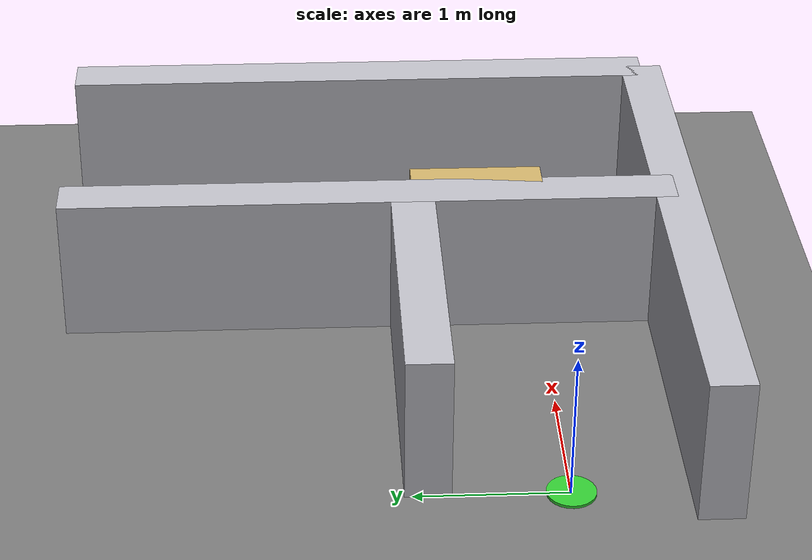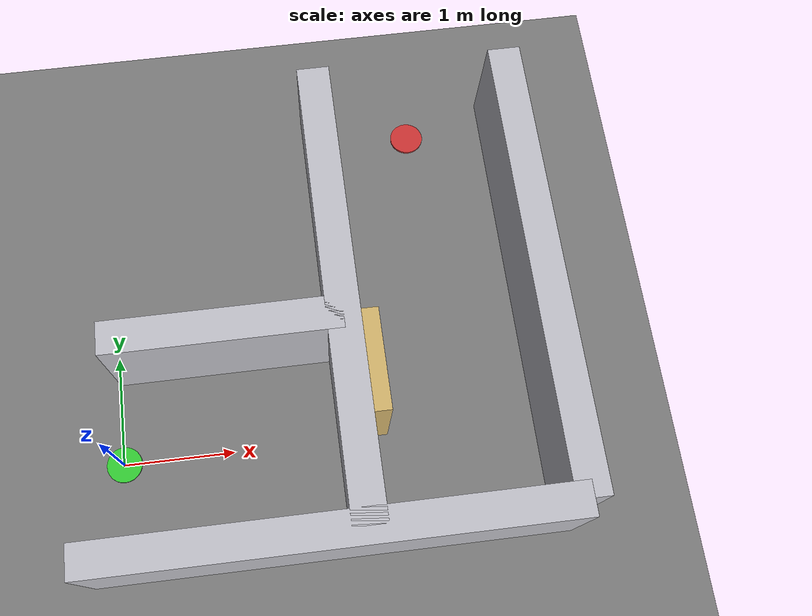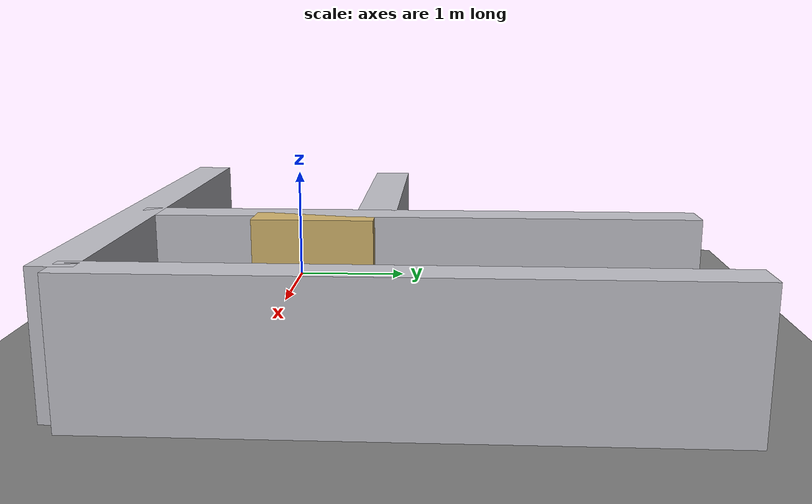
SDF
<?xml version="1.0"?>
<sdf version="1.8">
  <world name="baseline_narrow_gentle_turn">
    <physics name="1ms" type="ignored">
      <max_step_size>0.001</max_step_size>
      <real_time_factor>1.0</real_time_factor>
    </physics>
    <plugin filename="gz-sim-physics-system" name="gz::sim::systems::Physics"/>
    <plugin filename="gz-sim-sensors-system" name="gz::sim::systems::Sensors">
      <render_engine>ogre2</render_engine>
    </plugin>
    <plugin filename="gz-sim-user-commands-system" name="gz::sim::systems::UserCommands"/>
    <plugin filename="gz-sim-scene-broadcaster-system" name="gz::sim::systems::SceneBroadcaster"/>

    <gravity>0 0 -9.81</gravity>

    <light name="sun" type="directional">
      <cast_shadows>true</cast_shadows>
      <pose>0 0 10 0 0 0</pose>
      <diffuse>0.8 0.8 0.8 1</diffuse>
      <specular>0.2 0.2 0.2 1</specular>
      <attenuation>
        <range>1000</range>
        <constant>0.9</constant>
        <linear>0.01</linear>
        <quadratic>0.001</quadratic>
      </attenuation>
      <direction>-0.5 0.1 -0.9</direction>
    </light>

    <model name="ground_plane">
      <static>true</static>
      <link name="link">
        <collision name="collision"><geometry><plane><normal>0 0 1</normal><size>100 100</size></plane></geometry></collision>
        <visual name="visual"><geometry><plane><normal>0 0 1</normal><size>100 100</size></plane></geometry><material><ambient>0.48 0.48 0.48 1</ambient><diffuse>0.48 0.48 0.48 1</diffuse></material></visual>
      </link>
    </model>

    <!-- L-shaped corridor, 1.8m wide throughout.
         Horizontal: x=-0.3→2.1, y=-0.9→0.9
         Vertical:   x=2.1→3.9, y=-0.9→3.3
         90° left turn at the corner. -->

    <!-- Horizontal bottom wall (full span) -->
    <model name="h_bottom">
      <static>true</static>
      <pose>1.8 -0.9 0.5 0 0 0</pose>
      <link name="link">
        <collision name="collision"><geometry><box><size>4.2 0.3 1.0</size></box></geometry></collision>
        <visual name="visual"><geometry><box><size>4.2 0.3 1.0</size></box></geometry><material><ambient>0.75 0.75 0.78 1</ambient><diffuse>0.75 0.75 0.78 1</diffuse></material></visual>
      </link>
    </model>

    <!-- Horizontal top wall (stops at turn entrance) -->
    <model name="h_top">
      <static>true</static>
      <pose>1.05 0.9 0.5 0 0 0</pose>
      <link name="link">
        <collision name="collision"><geometry><box><size>2.1 0.3 1.0</size></box></geometry></collision>
        <visual name="visual"><geometry><box><size>2.1 0.3 1.0</size></box></geometry><material><ambient>0.75 0.75 0.78 1</ambient><diffuse>0.75 0.75 0.78 1</diffuse></material></visual>
      </link>
    </model>

    <!-- Inner corner block: prevents straight-through at turn -->
    <model name="inner_corner">
      <static>true</static>
      <pose>2.25 0.45 0.5 0 0 0</pose>
      <link name="link">
        <collision name="collision"><geometry><box><size>0.3 0.9 1.0</size></box></geometry></collision>
        <visual name="visual"><geometry><box><size>0.3 0.9 1.0</size></box></geometry><material><ambient>0.82 0.70 0.42 1</ambient><diffuse>0.82 0.70 0.42 1</diffuse></material></visual>
      </link>
    </model>

    <!-- Vertical left wall -->
    <model name="v_left">
      <static>true</static>
      <pose>2.1 1.2 0.5 0 0 0</pose>
      <link name="link">
        <collision name="collision"><geometry><box><size>0.3 4.2 1.0</size></box></geometry></collision>
        <visual name="visual"><geometry><box><size>0.3 4.2 1.0</size></box></geometry><material><ambient>0.75 0.75 0.78 1</ambient><diffuse>0.75 0.75 0.78 1</diffuse></material></visual>
      </link>
    </model>

    <!-- Vertical right wall -->
    <model name="v_right">
      <static>true</static>
      <pose>3.9 1.2 0.5 0 0 0</pose>
      <link name="link">
        <collision name="collision"><geometry><box><size>0.3 4.2 1.0</size></box></geometry></collision>
        <visual name="visual"><geometry><box><size>0.3 4.2 1.0</size></box></geometry><material><ambient>0.75 0.75 0.78 1</ambient><diffuse>0.75 0.75 0.78 1</diffuse></material></visual>
      </link>
    </model>

    <model name="start_marker">
      <static>true</static>
      <pose>0.0 0.0 0.01 0 0 0</pose>
      <link name="link">
        <visual name="visual"><geometry><cylinder><radius>0.16</radius><length>0.02</length></cylinder></geometry><material><ambient>0.2 0.8 0.2 1</ambient><diffuse>0.2 0.8 0.2 1</diffuse></material></visual>
      </link>
    </model>

    <model name="goal_marker">
      <static>true</static>
      <pose>3.0 3.0 0.01 0 0 0</pose>
      <link name="link">
        <visual name="visual"><geometry><cylinder><radius>0.16</radius><length>0.02</length></cylinder></geometry><material><ambient>0.8 0.2 0.2 1</ambient><diffuse>0.8 0.2 0.2 1</diffuse></material></visual>
      </link>
    </model>
  </world>
</sdf>
